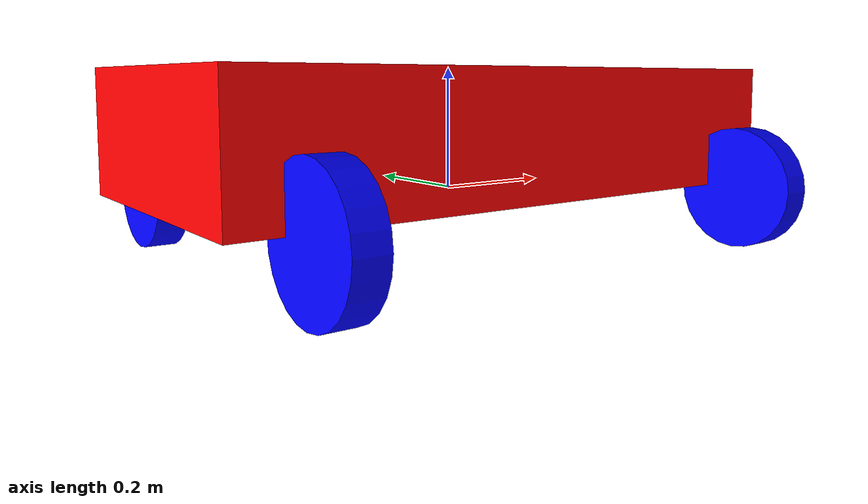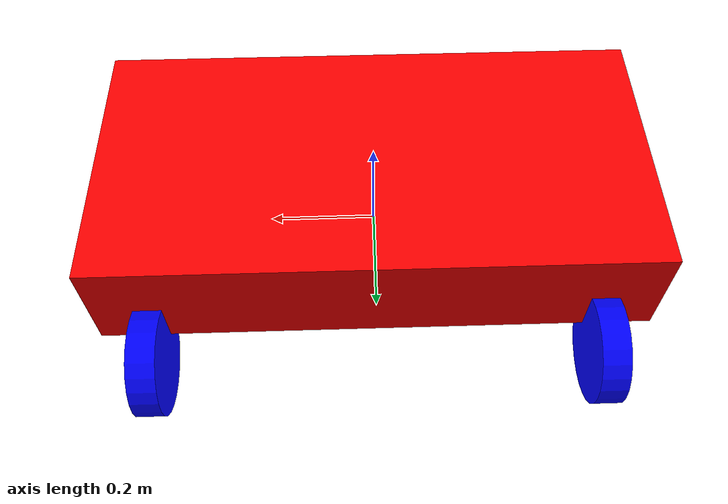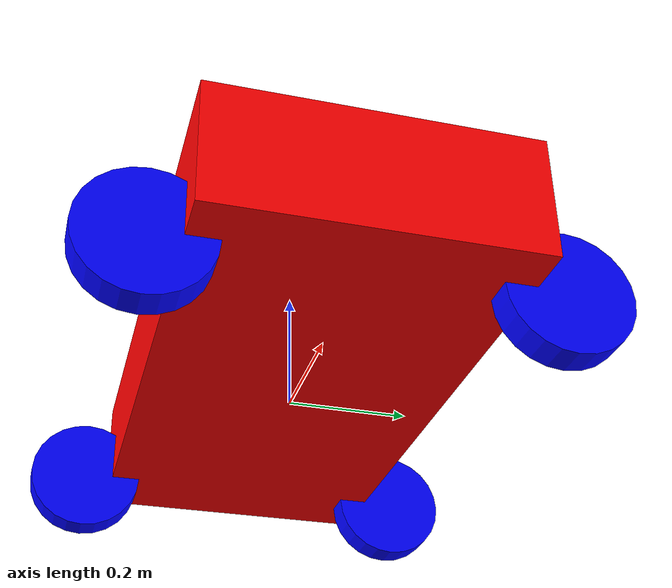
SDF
<?xml version="1.0" ?>
<sdf version="1.7">
  <model name="simple_rover">
    <!-- Main body: rectangular block -->
    <link name="chassis">
      <pose>0 0 0.1 0 0 0</pose>
      <inertial>
        <mass>1.0</mass>
      </inertial>
      <visual name="visual">
        <geometry>
          <box>
            <size>1.0 0.5 0.2</size>
          </box>
        </geometry>
        <material>
          <diffuse>1 0 0 1</diffuse>
        </material>
      </visual>
      <collision name="collision">
        <geometry>
          <box>
            <size>1.0 0.5 0.2</size>
          </box>
        </geometry>
      </collision>
    </link>

    <!-- Wheels: four cylinders -->
    <link name="left_front_wheel">
      <pose>0.4 0.3 0 0 1.5708 0</pose>
      <inertial>
        <mass>0.1</mass>
      </inertial>
      <visual name="visual">
        <geometry>
          <cylinder>
            <radius>0.1</radius>
            <length>0.05</length>
          </cylinder>
        </geometry>
        <material>
          <diffuse>0 0 1 1</diffuse>
        </material>
      </visual>
      <collision name="collision">
        <geometry>
          <cylinder>
            <radius>0.1</radius>
            <length>0.05</length>
          </cylinder>
        </geometry>
      </collision>
    </link>

    <link name="left_rear_wheel">
      <pose>-0.4 0.3 0 0 1.5708 0</pose>
      <inertial>
        <mass>0.1</mass>
      </inertial>
      <visual name="visual">
        <geometry>
          <cylinder>
            <radius>0.1</radius>
            <length>0.05</length>
          </cylinder>
        </geometry>
        <material>
          <diffuse>0 0 1 1</diffuse>
        </material>
      </visual>
      <collision name="collision">
        <geometry>
          <cylinder>
            <radius>0.1</radius>
            <length>0.05</length>
          </cylinder>
        </geometry>
      </collision>
    </link>

    <link name="right_front_wheel">
      <pose>0.4 -0.3 0 0 1.5708 0</pose>
      <inertial>
        <mass>0.1</mass>
      </inertial>
      <visual name="visual">
        <geometry>
          <cylinder>
            <radius>0.1</radius>
            <length>0.05</length>
          </cylinder>
        </geometry>
        <material>
          <diffuse>0 0 1 1</diffuse>
        </material>
      </visual>
      <collision name="collision">
        <geometry>
          <cylinder>
            <radius>0.1</radius>
            <length>0.05</length>
          </cylinder>
        </geometry>
      </collision>
    </link>

    <link name="right_rear_wheel">
      <pose>-0.4 -0.3 0 0 1.5708 0</pose>
      <inertial>
        <mass>0.1</mass>
      </inertial>
      <visual name="visual">
        <geometry>
          <cylinder>
            <radius>0.1</radius>
            <length>0.05</length>
          </cylinder>
        </geometry>
        <material>
          <diffuse>0 0 1 1</diffuse>
        </material>
      </visual>
      <collision name="collision">
        <geometry>
          <cylinder>
            <radius>0.1</radius>
            <length>0.05</length>
          </cylinder>
        </geometry>
      </collision>
    </link>

    <!-- Joints: connect wheels to chassis -->
    <joint name="left_front_wheel_joint" type="continuous">
      <parent>chassis</parent>
      <child>left_front_wheel</child>
      <axis>
        <xyz>0 1 0</xyz>
      </axis>
    </joint>
    <joint name="left_rear_wheel_joint" type="continuous">
      <parent>chassis</parent>
      <child>left_rear_wheel</child>
      <axis>
        <xyz>0 1 0</xyz>
      </axis>
    </joint>
    <joint name="right_front_wheel_joint" type="continuous">
      <parent>chassis</parent>
      <child>right_front_wheel</child>
      <axis>
        <xyz>0 1 0</xyz>
      </axis>
    </joint>
    <joint name="right_rear_wheel_joint" type="continuous">
      <parent>chassis</parent>
      <child>right_rear_wheel</child>
      <axis>
        <xyz>0 1 0</xyz>
      </axis>
    </joint>

    <!-- Differential Drive Plugin for ROS 2 Control -->
    <plugin name="diff_drive" filename="libgazebo_ros_diff_drive.so">
      <ros>
        <namespace>/rover</namespace>
      </ros>
      <left_joint>left_front_wheel_joint</left_joint>
      <left_joint>left_rear_wheel_joint</left_joint>
      <right_joint>right_front_wheel_joint</right_joint>
      <right_joint>right_rear_wheel_joint</right_joint>
      <wheel_separation>0.6</wheel_separation>
      <wheel_diameter>0.2</wheel_diameter>
      <max_wheel_torque>10</max_wheel_torque>
      <command_topic>cmd_vel</command_topic>
      <odometry_topic>odom</odometry_topic>
      <odometry_frame>odom</odometry_frame>
      <robot_base_frame>chassis</robot_base_frame>
    </plugin>
  </model>
</sdf>
